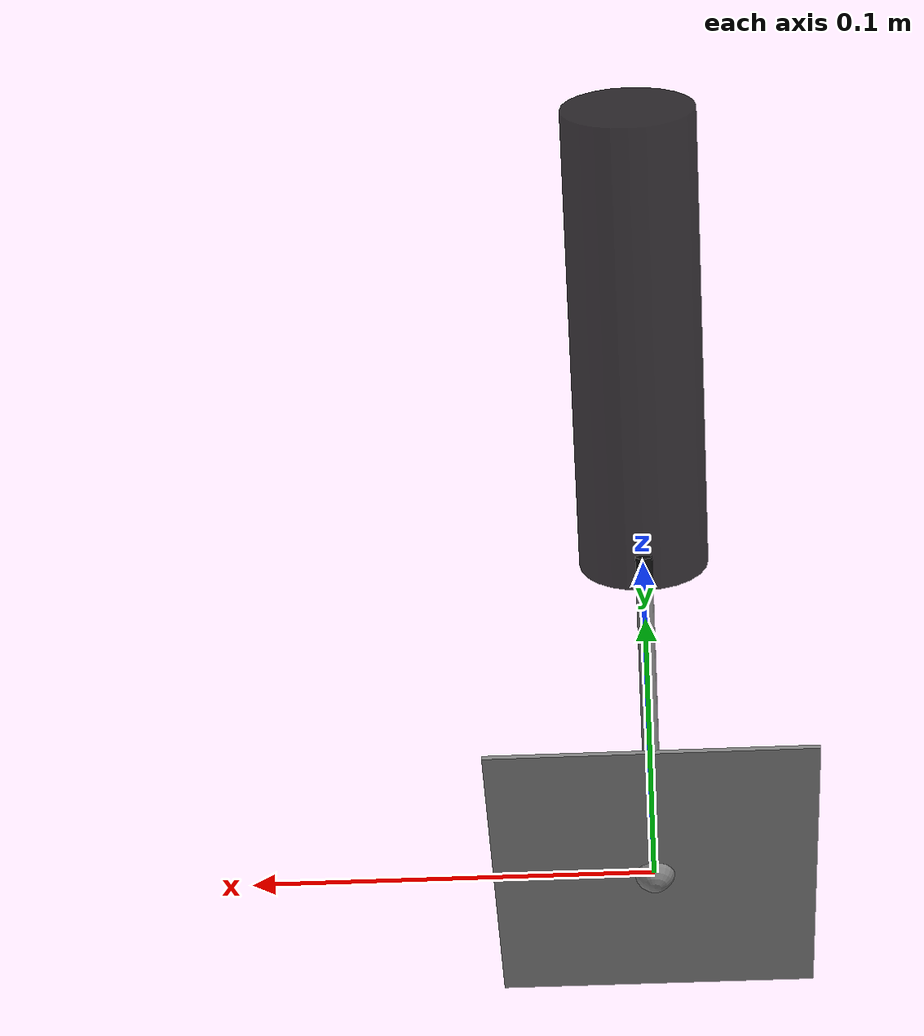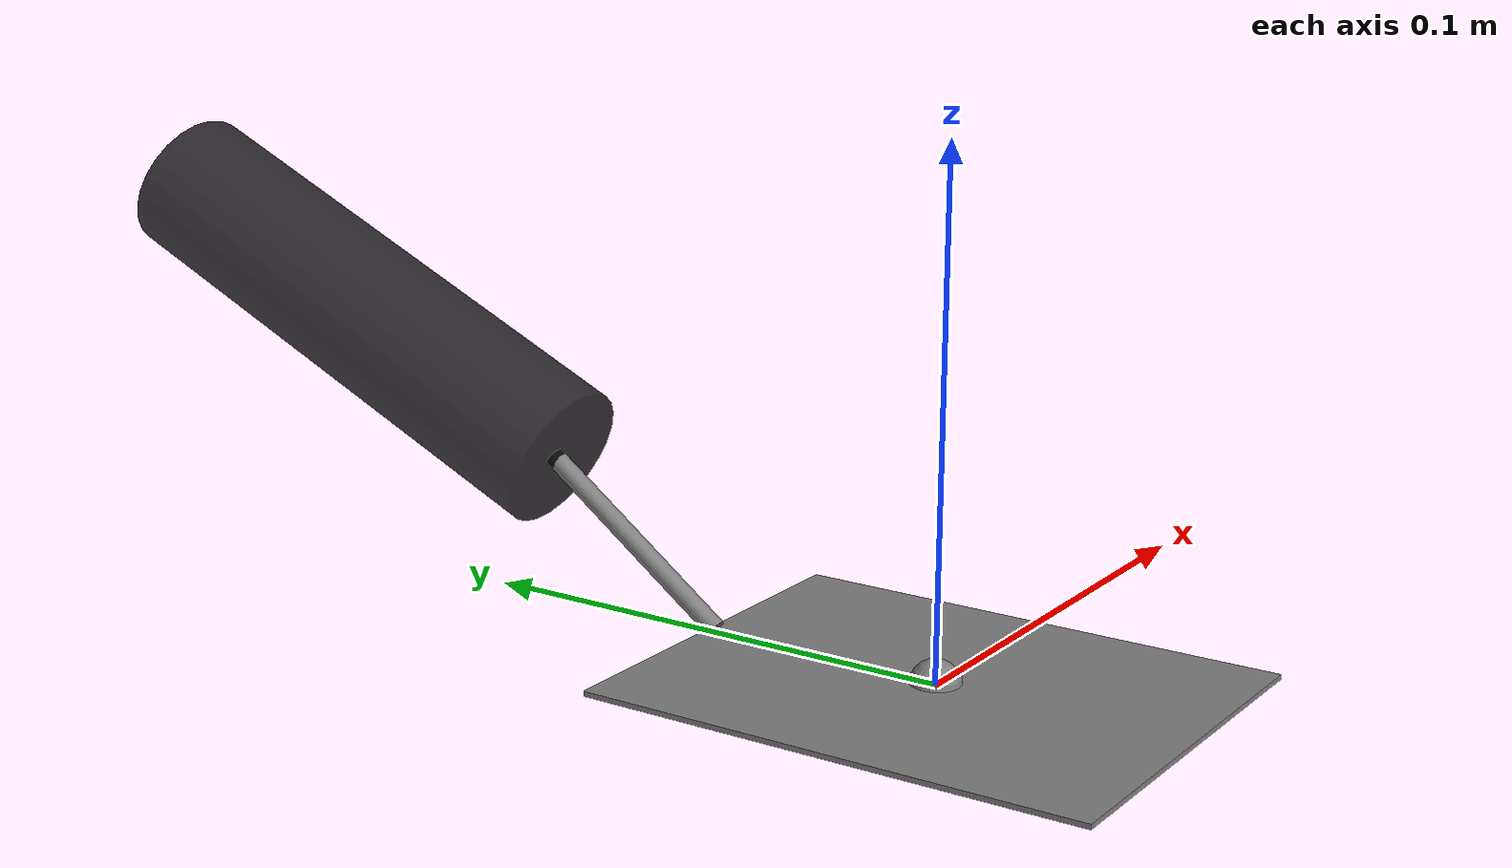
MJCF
<mujoco model="spatula">
  <compiler eulerseq="XYZ"/>
  <asset>
    <material name="material_1" emission="0" specular="0" rgba="0 0 0 0.80000001192092896"/>
  </asset>
  <worldbody>
    <body name="spatula" pos="0 0 0" euler="0 -0 0">
      <inertial pos="0 0.115649 0.044470999999999997" mass="0.068000000000000005" fullinertia="0.21095403274864072 0.037108032886608931 0.18858265237650276 -4.264472553729218e-08 0 -0.069821697385502049"/>
      <geom name="spatula_handle_collision" type="cylinder" group="3" size="0.014999999999999999 0.055" friction="1 0.0050000000000000001 0.0001" pos="0 0.13500000000000001 0.051999999999999998" euler="114.59155902616463 -0 0"/>
      <geom name="spatula_connector" type="cylinder" group="0" size="0.002 0.024" pos="0 0.067500000000000004 0.014999999999999999" euler="-53.858032742297382 0 0"/>
      <geom name="spatula_bottom" type="box" group="0" size="0.040000000000000001 0.050000000000000003 0.00050000000000000001" pos="0 0 0" euler="0 -0 0"/>
      <geom name="spatula_handle_visual" type="cylinder" contype="0" conaffinity="0" group="0" size="0.014999999999999999 0.055" material="material_1" pos="0 0.13500000000000001 0.051999999999999998" euler="114.59155902616463 -0 0"/>
      <freejoint name="spatula_freejoint"/>
      <site name="spatula" pos="0 0 0"/>
    </body>
  </worldbody>

  <sensor>
    <framepos name="spatula" objtype="site" objname="spatula"/>
  </sensor>
</mujoco>
